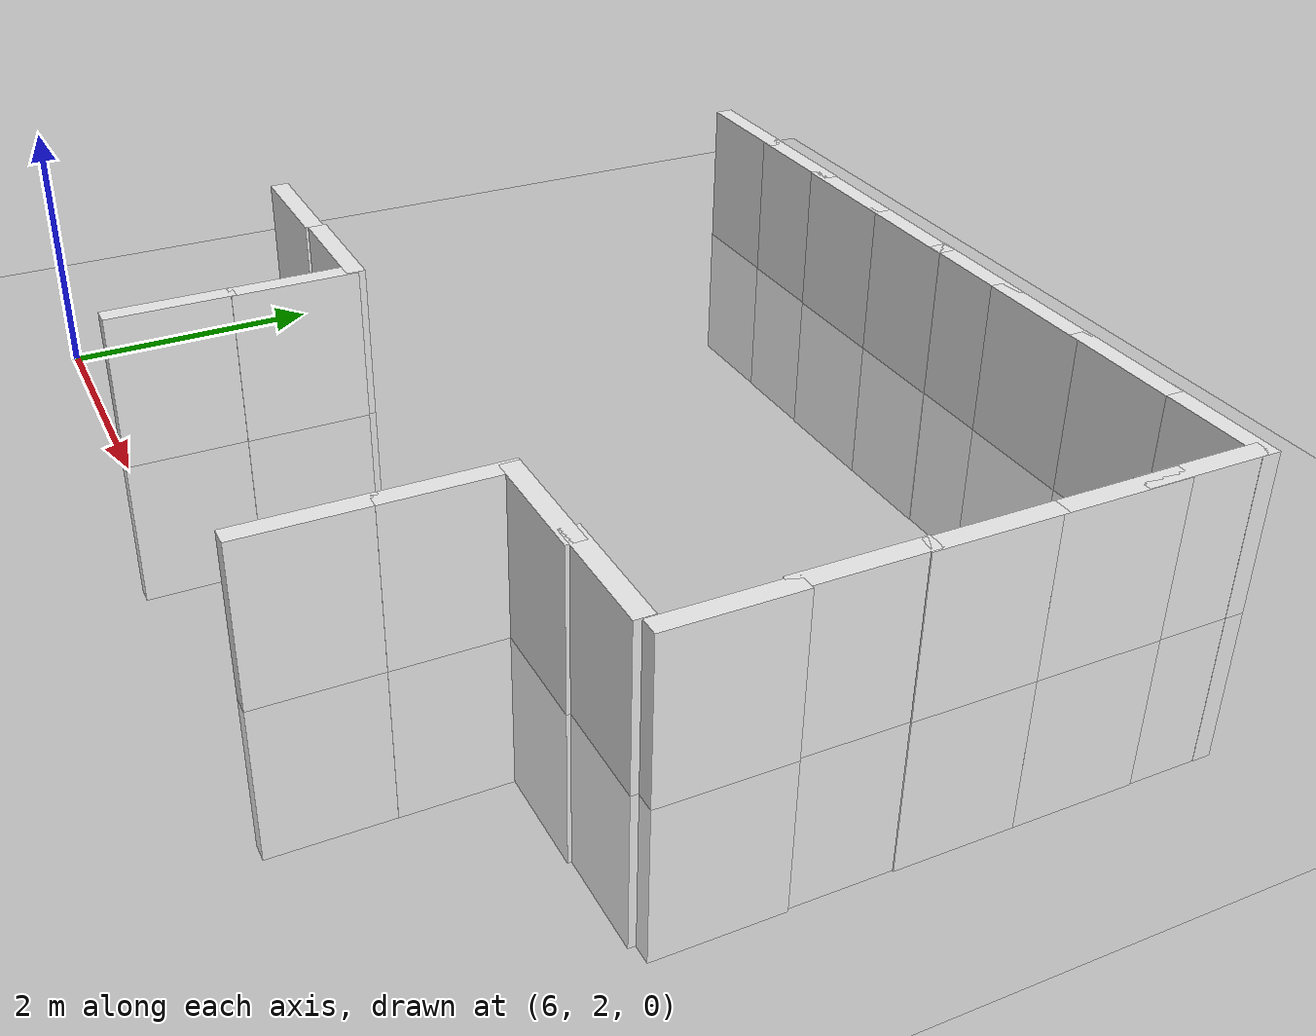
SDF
<sdf version="1.6">
 <world name="default">
  <model name="ground_plane">
   <static>1</static>
   <link name="link">
    <collision name="collision">
     <geometry><plane><normal>0 0 1</normal><size>100 100</size></plane></geometry>
     <surface><friction><ode><mu>100</mu><mu2>50</mu2></ode></friction></surface>
    </collision>
    <visual name="visual">
     <cast_shadows>0</cast_shadows>
     <geometry><plane><normal>0 0 1</normal><size>100 100</size></plane></geometry>
     <material>
      <script><uri>file://media/materials/scripts/gazebo.material</uri><name>Gazebo/Grey</name></script>
     </material>
    </visual>
   </link>
  </model>
  <model name="wall_left_12_clone_6">
   <link name="Wall_10">
    <inertial>
     <mass>1</mass>
     <inertia><ixx>1</ixx><ixy>0</ixy><ixz>0</ixz><iyy>1</iyy><iyz>0</iyz><izz>1</izz></inertia>
    </inertial>
    <visual name="Wall_10_Visual_0">
     <geometry><box><size>1 0.15 2.5</size></box></geometry>
     <material>
      <script>
       <uri>model://wall/materials/scripts</uri>
       <uri>model://wall/materials/textures</uri>
       <name>wall_white</name>
      </script>
      <shader type="pixel"><normal_map>__default__</normal_map></shader>
      <ambient>1 1 1 1</ambient>
      <diffuse>1 1 1 1</diffuse>
      <specular>0 0 0 1</specular>
      <emissive>0 0 0 1</emissive>
     </material>
     <meta><layer>0</layer></meta>
    </visual>
    <collision name="Wall_10_Collision_0">
     <geometry><box><size>1 0.15 2.5</size></box></geometry>
     <surface>
      <friction>
       <ode><mu>1</mu><mu2>1</mu2><fdir1>0 0 0</fdir1><slip1>0</slip1><slip2>0</slip2></ode>
       <torsional>
        <coefficient>1</coefficient>
        <patch_radius>0</patch_radius>
        <surface_radius>0</surface_radius>
        <use_patch_radius>1</use_patch_radius>
        <ode><slip>0</slip></ode>
       </torsional>
      </friction>
      <bounce><restitution_coefficient>0</restitution_coefficient><threshold>1e+06</threshold></bounce>
      <contact>
       <collide_without_contact>0</collide_without_contact>
       <collide_without_contact_bitmask>1</collide_without_contact_bitmask>
       <collide_bitmask>1</collide_bitmask>
       <ode>
        <soft_cfm>0</soft_cfm>
        <soft_erp>0.2</soft_erp>
        <kp>1e+13</kp>
        <kd>1</kd>
        <max_vel>0.01</max_vel>
        <min_depth>0</min_depth>
       </ode>
       <bullet>
        <split_impulse>1</split_impulse>
        <split_impulse_penetration_threshold>-0.01</split_impulse_penetration_threshold>
        <soft_cfm>0</soft_cfm>
        <soft_erp>0.2</soft_erp>
        <kp>1e+13</kp>
        <kd>1</kd>
       </bullet>
      </contact>
     </surface>
    </collision>
   </link>
   <static>1</static>
   <pose>7.89682 2.48741 0 0 -0 1.57</pose>
  </model>
  <model name="wall_left_12_clone_7">
   <link name="Wall_10">
    <inertial>
     <mass>1</mass>
     <inertia><ixx>1</ixx><ixy>0</ixy><ixz>0</ixz><iyy>1</iyy><iyz>0</iyz><izz>1</izz></inertia>
    </inertial>
    <visual name="Wall_10_Visual_0">
     <geometry><box><size>1 0.15 2.5</size></box></geometry>
     <material>
      <script>
       <uri>model://wall/materials/scripts</uri>
       <uri>model://wall/materials/textures</uri>
       <name>wall_white</name>
      </script>
      <shader type="pixel"><normal_map>__default__</normal_map></shader>
      <ambient>1 1 1 1</ambient>
      <diffuse>1 1 1 1</diffuse>
      <specular>0 0 0 1</specular>
      <emissive>0 0 0 1</emissive>
     </material>
     <meta><layer>0</layer></meta>
    </visual>
    <collision name="Wall_10_Collision_0">
     <geometry><box><size>1 0.15 2.5</size></box></geometry>
     <surface>
      <friction>
       <ode><mu>1</mu><mu2>1</mu2><fdir1>0 0 0</fdir1><slip1>0</slip1><slip2>0</slip2></ode>
       <torsional>
        <coefficient>1</coefficient>
        <patch_radius>0</patch_radius>
        <surface_radius>0</surface_radius>
        <use_patch_radius>1</use_patch_radius>
        <ode><slip>0</slip></ode>
       </torsional>
      </friction>
      <bounce><restitution_coefficient>0</restitution_coefficient><threshold>1e+06</threshold></bounce>
      <contact>
       <collide_without_contact>0</collide_without_contact>
       <collide_without_contact_bitmask>1</collide_without_contact_bitmask>
       <collide_bitmask>1</collide_bitmask>
       <ode>
        <soft_cfm>0</soft_cfm>
        <soft_erp>0.2</soft_erp>
        <kp>1e+13</kp>
        <kd>1</kd>
        <max_vel>0.01</max_vel>
        <min_depth>0</min_depth>
       </ode>
       <bullet>
        <split_impulse>1</split_impulse>
        <split_impulse_penetration_threshold>-0.01</split_impulse_penetration_threshold>
        <soft_cfm>0</soft_cfm>
        <soft_erp>0.2</soft_erp>
        <kp>1e+13</kp>
        <kd>1</kd>
       </bullet>
      </contact>
     </surface>
    </collision>
   </link>
   <static>1</static>
   <pose>7.90362 3.44582 0 0 -0 1.57</pose>
  </model>
  <model name="wall_left_12_clone_clone_9">
   <link name="Wall_10">
    <inertial>
     <mass>1</mass>
     <inertia><ixx>1</ixx><ixy>0</ixy><ixz>0</ixz><iyy>1</iyy><iyz>0</iyz><izz>1</izz></inertia>
    </inertial>
    <visual name="Wall_10_Visual_0">
     <geometry><box><size>1 0.15 2.5</size></box></geometry>
     <material>
      <script>
       <uri>model://wall/materials/scripts</uri>
       <uri>model://wall/materials/textures</uri>
       <name>wall_white</name>
      </script>
      <shader type="pixel"><normal_map>__default__</normal_map></shader>
      <ambient>1 1 1 1</ambient>
      <diffuse>1 1 1 1</diffuse>
      <specular>0 0 0 1</specular>
      <emissive>0 0 0 1</emissive>
     </material>
     <meta><layer>0</layer></meta>
    </visual>
    <collision name="Wall_10_Collision_0">
     <geometry><box><size>1 0.15 2.5</size></box></geometry>
     <surface>
      <friction>
       <ode><mu>1</mu><mu2>1</mu2><fdir1>0 0 0</fdir1><slip1>0</slip1><slip2>0</slip2></ode>
       <torsional>
        <coefficient>1</coefficient>
        <patch_radius>0</patch_radius>
        <surface_radius>0</surface_radius>
        <use_patch_radius>1</use_patch_radius>
        <ode><slip>0</slip></ode>
       </torsional>
      </friction>
      <bounce><restitution_coefficient>0</restitution_coefficient><threshold>1e+06</threshold></bounce>
      <contact>
       <collide_without_contact>0</collide_without_contact>
       <collide_without_contact_bitmask>1</collide_without_contact_bitmask>
       <collide_bitmask>1</collide_bitmask>
       <ode>
        <soft_cfm>0</soft_cfm>
        <soft_erp>0.2</soft_erp>
        <kp>1e+13</kp>
        <kd>1</kd>
        <max_vel>0.01</max_vel>
        <min_depth>0</min_depth>
       </ode>
       <bullet>
        <split_impulse>1</split_impulse>
        <split_impulse_penetration_threshold>-0.01</split_impulse_penetration_threshold>
        <soft_cfm>0</soft_cfm>
        <soft_erp>0.2</soft_erp>
        <kp>1e+13</kp>
        <kd>1</kd>
       </bullet>
      </contact>
     </surface>
    </collision>
   </link>
   <static>1</static>
   <pose>11.1292 2.51686 0 0 -0 1.57</pose>
  </model>
  <model name="wall_left_12_clone_clone_10">
   <link name="Wall_10">
    <inertial>
     <mass>1</mass>
     <inertia><ixx>1</ixx><ixy>0</ixy><ixz>0</ixz><iyy>1</iyy><iyz>0</iyz><izz>1</izz></inertia>
    </inertial>
    <visual name="Wall_10_Visual_0">
     <geometry><box><size>1 0.15 2.5</size></box></geometry>
     <material>
      <script>
       <uri>model://wall/materials/scripts</uri>
       <uri>model://wall/materials/textures</uri>
       <name>wall_white</name>
      </script>
      <shader type="pixel"><normal_map>__default__</normal_map></shader>
      <ambient>1 1 1 1</ambient>
      <diffuse>1 1 1 1</diffuse>
      <specular>0 0 0 1</specular>
      <emissive>0 0 0 1</emissive>
     </material>
     <meta><layer>0</layer></meta>
    </visual>
    <collision name="Wall_10_Collision_0">
     <geometry><box><size>1 0.15 2.5</size></box></geometry>
     <surface>
      <friction>
       <ode><mu>1</mu><mu2>1</mu2><fdir1>0 0 0</fdir1><slip1>0</slip1><slip2>0</slip2></ode>
       <torsional>
        <coefficient>1</coefficient>
        <patch_radius>0</patch_radius>
        <surface_radius>0</surface_radius>
        <use_patch_radius>1</use_patch_radius>
        <ode><slip>0</slip></ode>
       </torsional>
      </friction>
      <bounce><restitution_coefficient>0</restitution_coefficient><threshold>1e+06</threshold></bounce>
      <contact>
       <collide_without_contact>0</collide_without_contact>
       <collide_without_contact_bitmask>1</collide_without_contact_bitmask>
       <collide_bitmask>1</collide_bitmask>
       <ode>
        <soft_cfm>0</soft_cfm>
        <soft_erp>0.2</soft_erp>
        <kp>1e+13</kp>
        <kd>1</kd>
        <max_vel>0.01</max_vel>
        <min_depth>0</min_depth>
       </ode>
       <bullet>
        <split_impulse>1</split_impulse>
        <split_impulse_penetration_threshold>-0.01</split_impulse_penetration_threshold>
        <soft_cfm>0</soft_cfm>
        <soft_erp>0.2</soft_erp>
        <kp>1e+13</kp>
        <kd>1</kd>
       </bullet>
      </contact>
     </surface>
    </collision>
   </link>
   <static>1</static>
   <pose>11.1319 3.45812 0 0 -0 1.57</pose>
  </model>
  <model name="wall_right_13_clone_clone_0">
   <link name="Wall_10">
    <inertial>
     <mass>1</mass>
     <inertia><ixx>1</ixx><ixy>0</ixy><ixz>0</ixz><iyy>1</iyy><iyz>0</iyz><izz>1</izz></inertia>
    </inertial>
    <visual name="Wall_10_Visual_0">
     <geometry><box><size>1 0.15 2.5</size></box></geometry>
     <material>
      <script>
       <uri>model://wall/materials/scripts</uri>
       <uri>model://wall/materials/textures</uri>
       <name>wall_white</name>
      </script>
      <shader type="pixel"><normal_map>__default__</normal_map></shader>
      <ambient>1 1 1 1</ambient>
      <diffuse>1 1 1 1</diffuse>
      <specular>0 0 0 1</specular>
      <emissive>0 0 0 1</emissive>
     </material>
     <meta><layer>0</layer></meta>
    </visual>
    <collision name="Wall_10_Collision_0">
     <geometry><box><size>1 0.15 2.5</size></box></geometry>
     <surface>
      <friction>
       <ode><mu>1</mu><mu2>1</mu2><fdir1>0 0 0</fdir1><slip1>0</slip1><slip2>0</slip2></ode>
       <torsional>
        <coefficient>1</coefficient>
        <patch_radius>0</patch_radius>
        <surface_radius>0</surface_radius>
        <use_patch_radius>1</use_patch_radius>
        <ode><slip>0</slip></ode>
       </torsional>
      </friction>
      <bounce><restitution_coefficient>0</restitution_coefficient><threshold>1e+06</threshold></bounce>
      <contact>
       <collide_without_contact>0</collide_without_contact>
       <collide_without_contact_bitmask>1</collide_without_contact_bitmask>
       <collide_bitmask>1</collide_bitmask>
       <ode>
        <soft_cfm>0</soft_cfm>
        <soft_erp>0.2</soft_erp>
        <kp>1e+13</kp>
        <kd>1</kd>
        <max_vel>0.01</max_vel>
        <min_depth>0</min_depth>
       </ode>
       <bullet>
        <split_impulse>1</split_impulse>
        <split_impulse_penetration_threshold>-0.01</split_impulse_penetration_threshold>
        <soft_cfm>0</soft_cfm>
        <soft_erp>0.2</soft_erp>
        <kp>1e+13</kp>
        <kd>1</kd>
       </bullet>
      </contact>
     </surface>
    </collision>
   </link>
   <static>1</static>
   <pose>7.46229 3.92869 0 0 -0 0</pose>
  </model>
  <model name="wall_right_13_clone_clone_1">
   <link name="Wall_10">
    <inertial>
     <mass>1</mass>
     <inertia><ixx>1</ixx><ixy>0</ixy><ixz>0</ixz><iyy>1</iyy><iyz>0</iyz><izz>1</izz></inertia>
    </inertial>
    <visual name="Wall_10_Visual_0">
     <geometry><box><size>1 0.15 2.5</size></box></geometry>
     <material>
      <script>
       <uri>model://wall/materials/scripts</uri>
       <uri>model://wall/materials/textures</uri>
       <name>wall_white</name>
      </script>
      <shader type="pixel"><normal_map>__default__</normal_map></shader>
      <ambient>1 1 1 1</ambient>
      <diffuse>1 1 1 1</diffuse>
      <specular>0 0 0 1</specular>
      <emissive>0 0 0 1</emissive>
     </material>
     <meta><layer>0</layer></meta>
    </visual>
    <collision name="Wall_10_Collision_0">
     <geometry><box><size>1 0.15 2.5</size></box></geometry>
     <surface>
      <friction>
       <ode><mu>1</mu><mu2>1</mu2><fdir1>0 0 0</fdir1><slip1>0</slip1><slip2>0</slip2></ode>
       <torsional>
        <coefficient>1</coefficient>
        <patch_radius>0</patch_radius>
        <surface_radius>0</surface_radius>
        <use_patch_radius>1</use_patch_radius>
        <ode><slip>0</slip></ode>
       </torsional>
      </friction>
      <bounce><restitution_coefficient>0</restitution_coefficient><threshold>1e+06</threshold></bounce>
      <contact>
       <collide_without_contact>0</collide_without_contact>
       <collide_without_contact_bitmask>1</collide_without_contact_bitmask>
       <collide_bitmask>1</collide_bitmask>
       <ode>
        <soft_cfm>0</soft_cfm>
        <soft_erp>0.2</soft_erp>
        <kp>1e+13</kp>
        <kd>1</kd>
        <max_vel>0.01</max_vel>
        <min_depth>0</min_depth>
       </ode>
       <bullet>
        <split_impulse>1</split_impulse>
        <split_impulse_penetration_threshold>-0.01</split_impulse_penetration_threshold>
        <soft_cfm>0</soft_cfm>
        <soft_erp>0.2</soft_erp>
        <kp>1e+13</kp>
        <kd>1</kd>
       </bullet>
      </contact>
     </surface>
    </collision>
   </link>
   <static>1</static>
   <pose>6.47053 3.90639 0 0 -0 0</pose>
  </model>
  <model name="wall_right_13_clone_clone_8">
   <link name="Wall_10">
    <inertial>
     <mass>1</mass>
     <inertia><ixx>1</ixx><ixy>0</ixy><ixz>0</ixz><iyy>1</iyy><iyz>0</iyz><izz>1</izz></inertia>
    </inertial>
    <visual name="Wall_10_Visual_0">
     <geometry><box><size>1 0.15 2.5</size></box></geometry>
     <material>
      <script>
       <uri>model://wall/materials/scripts</uri>
       <uri>model://wall/materials/textures</uri>
       <name>wall_white</name>
      </script>
      <shader type="pixel"><normal_map>__default__</normal_map></shader>
      <ambient>1 1 1 1</ambient>
      <diffuse>1 1 1 1</diffuse>
      <specular>0 0 0 1</specular>
      <emissive>0 0 0 1</emissive>
     </material>
     <meta><layer>0</layer></meta>
    </visual>
    <collision name="Wall_10_Collision_0">
     <geometry><box><size>1 0.15 2.5</size></box></geometry>
     <surface>
      <friction>
       <ode><mu>1</mu><mu2>1</mu2><fdir1>0 0 0</fdir1><slip1>0</slip1><slip2>0</slip2></ode>
       <torsional>
        <coefficient>1</coefficient>
        <patch_radius>0</patch_radius>
        <surface_radius>0</surface_radius>
        <use_patch_radius>1</use_patch_radius>
        <ode><slip>0</slip></ode>
       </torsional>
      </friction>
      <bounce><restitution_coefficient>0</restitution_coefficient><threshold>1e+06</threshold></bounce>
      <contact>
       <collide_without_contact>0</collide_without_contact>
       <collide_without_contact_bitmask>1</collide_without_contact_bitmask>
       <collide_bitmask>1</collide_bitmask>
       <ode>
        <soft_cfm>0</soft_cfm>
        <soft_erp>0.2</soft_erp>
        <kp>1e+13</kp>
        <kd>1</kd>
        <max_vel>0.01</max_vel>
        <min_depth>0</min_depth>
       </ode>
       <bullet>
        <split_impulse>1</split_impulse>
        <split_impulse_penetration_threshold>-0.01</split_impulse_penetration_threshold>
        <soft_cfm>0</soft_cfm>
        <soft_erp>0.2</soft_erp>
        <kp>1e+13</kp>
        <kd>1</kd>
       </bullet>
      </contact>
     </surface>
    </collision>
   </link>
   <static>1</static>
   <pose>11.5826 3.88538 0 0 -0 0</pose>
  </model>
  <model name="wall_right_13_clone_clone_9">
   <link name="Wall_10">
    <inertial>
     <mass>1</mass>
     <inertia><ixx>1</ixx><ixy>0</ixy><ixz>0</ixz><iyy>1</iyy><iyz>0</iyz><izz>1</izz></inertia>
    </inertial>
    <visual name="Wall_10_Visual_0">
     <geometry><box><size>1 0.15 2.5</size></box></geometry>
     <material>
      <script>
       <uri>model://wall/materials/scripts</uri>
       <uri>model://wall/materials/textures</uri>
       <name>wall_white</name>
      </script>
      <shader type="pixel"><normal_map>__default__</normal_map></shader>
      <ambient>1 1 1 1</ambient>
      <diffuse>1 1 1 1</diffuse>
      <specular>0 0 0 1</specular>
      <emissive>0 0 0 1</emissive>
     </material>
     <meta><layer>0</layer></meta>
    </visual>
    <collision name="Wall_10_Collision_0">
     <geometry><box><size>1 0.15 2.5</size></box></geometry>
     <surface>
      <friction>
       <ode><mu>1</mu><mu2>1</mu2><fdir1>0 0 0</fdir1><slip1>0</slip1><slip2>0</slip2></ode>
       <torsional>
        <coefficient>1</coefficient>
        <patch_radius>0</patch_radius>
        <surface_radius>0</surface_radius>
        <use_patch_radius>1</use_patch_radius>
        <ode><slip>0</slip></ode>
       </torsional>
      </friction>
      <bounce><restitution_coefficient>0</restitution_coefficient><threshold>1e+06</threshold></bounce>
      <contact>
       <collide_without_contact>0</collide_without_contact>
       <collide_without_contact_bitmask>1</collide_without_contact_bitmask>
       <collide_bitmask>1</collide_bitmask>
       <ode>
        <soft_cfm>0</soft_cfm>
        <soft_erp>0.2</soft_erp>
        <kp>1e+13</kp>
        <kd>1</kd>
        <max_vel>0.01</max_vel>
        <min_depth>0</min_depth>
       </ode>
       <bullet>
        <split_impulse>1</split_impulse>
        <split_impulse_penetration_threshold>-0.01</split_impulse_penetration_threshold>
        <soft_cfm>0</soft_cfm>
        <soft_erp>0.2</soft_erp>
        <kp>1e+13</kp>
        <kd>1</kd>
       </bullet>
      </contact>
     </surface>
    </collision>
   </link>
   <static>1</static>
   <pose>12.4067 3.91491 0 0 -0 0</pose>
  </model>
  <model name="wall_left_12_clone_7_clone">
   <link name="Wall_10">
    <inertial>
     <mass>1</mass>
     <inertia><ixx>1</ixx><ixy>0</ixy><ixz>0</ixz><iyy>1</iyy><iyz>0</iyz><izz>1</izz></inertia>
    </inertial>
    <visual name="Wall_10_Visual_0">
     <geometry><box><size>1 0.15 2.5</size></box></geometry>
     <material>
      <script>
       <uri>model://wall/materials/scripts</uri>
       <uri>model://wall/materials/textures</uri>
       <name>wall_white</name>
      </script>
      <shader type="pixel"><normal_map>__default__</normal_map></shader>
      <ambient>1 1 1 1</ambient>
      <diffuse>1 1 1 1</diffuse>
      <specular>0 0 0 1</specular>
      <emissive>0 0 0 1</emissive>
     </material>
     <meta><layer>0</layer></meta>
    </visual>
    <collision name="Wall_10_Collision_0">
     <geometry><box><size>1 0.15 2.5</size></box></geometry>
     <surface>
      <friction>
       <ode><mu>1</mu><mu2>1</mu2><fdir1>0 0 0</fdir1><slip1>0</slip1><slip2>0</slip2></ode>
       <torsional>
        <coefficient>1</coefficient>
        <patch_radius>0</patch_radius>
        <surface_radius>0</surface_radius>
        <use_patch_radius>1</use_patch_radius>
        <ode><slip>0</slip></ode>
       </torsional>
      </friction>
      <bounce><restitution_coefficient>0</restitution_coefficient><threshold>1e+06</threshold></bounce>
      <contact>
       <collide_without_contact>0</collide_without_contact>
       <collide_without_contact_bitmask>1</collide_without_contact_bitmask>
       <collide_bitmask>1</collide_bitmask>
       <ode>
        <soft_cfm>0</soft_cfm>
        <soft_erp>0.2</soft_erp>
        <kp>1e+13</kp>
        <kd>1</kd>
        <max_vel>0.01</max_vel>
        <min_depth>0</min_depth>
       </ode>
       <bullet>
        <split_impulse>1</split_impulse>
        <split_impulse_penetration_threshold>-0.01</split_impulse_penetration_threshold>
        <soft_cfm>0</soft_cfm>
        <soft_erp>0.2</soft_erp>
        <kp>1e+13</kp>
        <kd>1</kd>
       </bullet>
      </contact>
     </surface>
    </collision>
   </link>
   <static>1</static>
   <pose>12.9889 4.3942 0 0 -0 1.57</pose>
  </model>
  <model name="wall_left_12_clone_7_clone_0">
   <link name="Wall_10">
    <inertial>
     <mass>1</mass>
     <inertia><ixx>1</ixx><ixy>0</ixy><ixz>0</ixz><iyy>1</iyy><iyz>0</iyz><izz>1</izz></inertia>
    </inertial>
    <visual name="Wall_10_Visual_0">
     <geometry><box><size>1 0.15 2.5</size></box></geometry>
     <material>
      <script>
       <uri>model://wall/materials/scripts</uri>
       <uri>model://wall/materials/textures</uri>
       <name>wall_white</name>
      </script>
      <shader type="pixel"><normal_map>__default__</normal_map></shader>
      <ambient>1 1 1 1</ambient>
      <diffuse>1 1 1 1</diffuse>
      <specular>0 0 0 1</specular>
      <emissive>0 0 0 1</emissive>
     </material>
     <meta><layer>0</layer></meta>
    </visual>
    <collision name="Wall_10_Collision_0">
     <geometry><box><size>1 0.15 2.5</size></box></geometry>
     <surface>
      <friction>
       <ode><mu>1</mu><mu2>1</mu2><fdir1>0 0 0</fdir1><slip1>0</slip1><slip2>0</slip2></ode>
       <torsional>
        <coefficient>1</coefficient>
        <patch_radius>0</patch_radius>
        <surface_radius>0</surface_radius>
        <use_patch_radius>1</use_patch_radius>
        <ode><slip>0</slip></ode>
       </torsional>
      </friction>
      <bounce><restitution_coefficient>0</restitution_coefficient><threshold>1e+06</threshold></bounce>
      <contact>
       <collide_without_contact>0</collide_without_contact>
       <collide_without_contact_bitmask>1</collide_without_contact_bitmask>
       <collide_bitmask>1</collide_bitmask>
       <ode>
        <soft_cfm>0</soft_cfm>
        <soft_erp>0.2</soft_erp>
        <kp>1e+13</kp>
        <kd>1</kd>
        <max_vel>0.01</max_vel>
        <min_depth>0</min_depth>
       </ode>
       <bullet>
        <split_impulse>1</split_impulse>
        <split_impulse_penetration_threshold>-0.01</split_impulse_penetration_threshold>
        <soft_cfm>0</soft_cfm>
        <soft_erp>0.2</soft_erp>
        <kp>1e+13</kp>
        <kd>1</kd>
       </bullet>
      </contact>
     </surface>
    </collision>
   </link>
   <static>1</static>
   <pose>12.9699 5.29161 0 0 -0 1.57</pose>
  </model>
  <model name="wall_left_12_clone_7_clone_1">
   <link name="Wall_10">
    <inertial>
     <mass>1</mass>
     <inertia><ixx>1</ixx><ixy>0</ixy><ixz>0</ixz><iyy>1</iyy><iyz>0</iyz><izz>1</izz></inertia>
    </inertial>
    <visual name="Wall_10_Visual_0">
     <geometry><box><size>1 0.15 2.5</size></box></geometry>
     <material>
      <script>
       <uri>model://wall/materials/scripts</uri>
       <uri>model://wall/materials/textures</uri>
       <name>wall_white</name>
      </script>
      <shader type="pixel"><normal_map>__default__</normal_map></shader>
      <ambient>1 1 1 1</ambient>
      <diffuse>1 1 1 1</diffuse>
      <specular>0 0 0 1</specular>
      <emissive>0 0 0 1</emissive>
     </material>
     <meta><layer>0</layer></meta>
    </visual>
    <collision name="Wall_10_Collision_0">
     <geometry><box><size>1 0.15 2.5</size></box></geometry>
     <surface>
      <friction>
       <ode><mu>1</mu><mu2>1</mu2><fdir1>0 0 0</fdir1><slip1>0</slip1><slip2>0</slip2></ode>
       <torsional>
        <coefficient>1</coefficient>
        <patch_radius>0</patch_radius>
        <surface_radius>0</surface_radius>
        <use_patch_radius>1</use_patch_radius>
        <ode><slip>0</slip></ode>
       </torsional>
      </friction>
      <bounce><restitution_coefficient>0</restitution_coefficient><threshold>1e+06</threshold></bounce>
      <contact>
       <collide_without_contact>0</collide_without_contact>
       <collide_without_contact_bitmask>1</collide_without_contact_bitmask>
       <collide_bitmask>1</collide_bitmask>
       <ode>
        <soft_cfm>0</soft_cfm>
        <soft_erp>0.2</soft_erp>
        <kp>1e+13</kp>
        <kd>1</kd>
        <max_vel>0.01</max_vel>
        <min_depth>0</min_depth>
       </ode>
       <bullet>
        <split_impulse>1</split_impulse>
        <split_impulse_penetration_threshold>-0.01</split_impulse_penetration_threshold>
        <soft_cfm>0</soft_cfm>
        <soft_erp>0.2</soft_erp>
        <kp>1e+13</kp>
        <kd>1</kd>
       </bullet>
      </contact>
     </surface>
    </collision>
   </link>
   <static>1</static>
   <pose>12.9821 6.19469 0 0 -0 1.57</pose>
  </model>
  <model name="wall_left_12_clone_7_clone_1_clone">
   <link name="Wall_10">
    <inertial>
     <mass>1</mass>
     <inertia><ixx>1</ixx><ixy>0</ixy><ixz>0</ixz><iyy>1</iyy><iyz>0</iyz><izz>1</izz></inertia>
    </inertial>
    <visual name="Wall_10_Visual_0">
     <geometry><box><size>1 0.15 2.5</size></box></geometry>
     <material>
      <script>
       <uri>model://wall/materials/scripts</uri>
       <uri>model://wall/materials/textures</uri>
       <name>wall_white</name>
      </script>
      <shader type="pixel"><normal_map>__default__</normal_map></shader>
      <ambient>1 1 1 1</ambient>
      <diffuse>1 1 1 1</diffuse>
      <specular>0 0 0 1</specular>
      <emissive>0 0 0 1</emissive>
     </material>
     <meta><layer>0</layer></meta>
    </visual>
    <collision name="Wall_10_Collision_0">
     <geometry><box><size>1 0.15 2.5</size></box></geometry>
     <surface>
      <friction>
       <ode><mu>1</mu><mu2>1</mu2><fdir1>0 0 0</fdir1><slip1>0</slip1><slip2>0</slip2></ode>
       <torsional>
        <coefficient>1</coefficient>
        <patch_radius>0</patch_radius>
        <surface_radius>0</surface_radius>
        <use_patch_radius>1</use_patch_radius>
        <ode><slip>0</slip></ode>
       </torsional>
      </friction>
      <bounce><restitution_coefficient>0</restitution_coefficient><threshold>1e+06</threshold></bounce>
      <contact>
       <collide_without_contact>0</collide_without_contact>
       <collide_without_contact_bitmask>1</collide_without_contact_bitmask>
       <collide_bitmask>1</collide_bitmask>
       <ode>
        <soft_cfm>0</soft_cfm>
        <soft_erp>0.2</soft_erp>
        <kp>1e+13</kp>
        <kd>1</kd>
        <max_vel>0.01</max_vel>
        <min_depth>0</min_depth>
       </ode>
       <bullet>
        <split_impulse>1</split_impulse>
        <split_impulse_penetration_threshold>-0.01</split_impulse_penetration_threshold>
        <soft_cfm>0</soft_cfm>
        <soft_erp>0.2</soft_erp>
        <kp>1e+13</kp>
        <kd>1</kd>
       </bullet>
      </contact>
     </surface>
    </collision>
   </link>
   <static>1</static>
   <pose>12.983 7.14752 0 0 -0 1.57</pose>
  </model>
  <model name="wall_left_12_clone_7_clone_1_clone_0">
   <link name="Wall_10">
    <inertial>
     <mass>1</mass>
     <inertia><ixx>1</ixx><ixy>0</ixy><ixz>0</ixz><iyy>1</iyy><iyz>0</iyz><izz>1</izz></inertia>
    </inertial>
    <visual name="Wall_10_Visual_0">
     <geometry><box><size>1 0.15 2.5</size></box></geometry>
     <material>
      <script>
       <uri>model://wall/materials/scripts</uri>
       <uri>model://wall/materials/textures</uri>
       <name>wall_white</name>
      </script>
      <shader type="pixel"><normal_map>__default__</normal_map></shader>
      <ambient>1 1 1 1</ambient>
      <diffuse>1 1 1 1</diffuse>
      <specular>0 0 0 1</specular>
      <emissive>0 0 0 1</emissive>
     </material>
     <meta><layer>0</layer></meta>
    </visual>
    <collision name="Wall_10_Collision_0">
     <geometry><box><size>1 0.15 2.5</size></box></geometry>
     <surface>
      <friction>
       <ode><mu>1</mu><mu2>1</mu2><fdir1>0 0 0</fdir1><slip1>0</slip1><slip2>0</slip2></ode>
       <torsional>
        <coefficient>1</coefficient>
        <patch_radius>0</patch_radius>
        <surface_radius>0</surface_radius>
        <use_patch_radius>1</use_patch_radius>
        <ode><slip>0</slip></ode>
       </torsional>
      </friction>
      <bounce><restitution_coefficient>0</restitution_coefficient><threshold>1e+06</threshold></bounce>
      <contact>
       <collide_without_contact>0</collide_without_contact>
       <collide_without_contact_bitmask>1</collide_without_contact_bitmask>
       <collide_bitmask>1</collide_bitmask>
       <ode>
        <soft_cfm>0</soft_cfm>
        <soft_erp>0.2</soft_erp>
        <kp>1e+13</kp>
        <kd>1</kd>
        <max_vel>0.01</max_vel>
        <min_depth>0</min_depth>
       </ode>
       <bullet>
        <split_impulse>1</split_impulse>
        <split_impulse_penetration_threshold>-0.01</split_impulse_penetration_threshold>
        <soft_cfm>0</soft_cfm>
        <soft_erp>0.2</soft_erp>
        <kp>1e+13</kp>
        <kd>1</kd>
       </bullet>
      </contact>
     </surface>
    </collision>
   </link>
   <static>1</static>
   <pose>12.978 7.80362 0 0 -0 1.57</pose>
  </model>
  <model name="wall_right_13_clone_clone_9_clone">
   <link name="Wall_10">
    <inertial>
     <mass>1</mass>
     <inertia><ixx>1</ixx><ixy>0</ixy><ixz>0</ixz><iyy>1</iyy><iyz>0</iyz><izz>1</izz></inertia>
    </inertial>
    <visual name="Wall_10_Visual_0">
     <geometry><box><size>1 0.15 2.5</size></box></geometry>
     <material>
      <script>
       <uri>model://wall/materials/scripts</uri>
       <uri>model://wall/materials/textures</uri>
       <name>wall_white</name>
      </script>
      <shader type="pixel"><normal_map>__default__</normal_map></shader>
      <ambient>1 1 1 1</ambient>
      <diffuse>1 1 1 1</diffuse>
      <specular>0 0 0 1</specular>
      <emissive>0 0 0 1</emissive>
     </material>
     <meta><layer>0</layer></meta>
    </visual>
    <collision name="Wall_10_Collision_0">
     <geometry><box><size>1 0.15 2.5</size></box></geometry>
     <surface>
      <friction>
       <ode><mu>1</mu><mu2>1</mu2><fdir1>0 0 0</fdir1><slip1>0</slip1><slip2>0</slip2></ode>
       <torsional>
        <coefficient>1</coefficient>
        <patch_radius>0</patch_radius>
        <surface_radius>0</surface_radius>
        <use_patch_radius>1</use_patch_radius>
        <ode><slip>0</slip></ode>
       </torsional>
      </friction>
      <bounce><restitution_coefficient>0</restitution_coefficient><threshold>1e+06</threshold></bounce>
      <contact>
       <collide_without_contact>0</collide_without_contact>
       <collide_without_contact_bitmask>1</collide_without_contact_bitmask>
       <collide_bitmask>1</collide_bitmask>
       <ode>
        <soft_cfm>0</soft_cfm>
        <soft_erp>0.2</soft_erp>
        <kp>1e+13</kp>
        <kd>1</kd>
        <max_vel>0.01</max_vel>
        <min_depth>0</min_depth>
       </ode>
       <bullet>
        <split_impulse>1</split_impulse>
        <split_impulse_penetration_threshold>-0.01</split_impulse_penetration_threshold>
        <soft_cfm>0</soft_cfm>
        <soft_erp>0.2</soft_erp>
        <kp>1e+13</kp>
        <kd>1</kd>
       </bullet>
      </contact>
     </surface>
    </collision>
   </link>
   <static>1</static>
   <pose>12.5557 8.28504 0 0 -0 0</pose>
  </model>
  <model name="wall_right_13_clone_clone_9_clone_0">
   <link name="Wall_10">
    <inertial>
     <mass>1</mass>
     <inertia><ixx>1</ixx><ixy>0</ixy><ixz>0</ixz><iyy>1</iyy><iyz>0</iyz><izz>1</izz></inertia>
    </inertial>
    <visual name="Wall_10_Visual_0">
     <geometry><box><size>1 0.15 2.5</size></box></geometry>
     <material>
      <script>
       <uri>model://wall/materials/scripts</uri>
       <uri>model://wall/materials/textures</uri>
       <name>wall_white</name>
      </script>
      <shader type="pixel"><normal_map>__default__</normal_map></shader>
      <ambient>1 1 1 1</ambient>
      <diffuse>1 1 1 1</diffuse>
      <specular>0 0 0 1</specular>
      <emissive>0 0 0 1</emissive>
     </material>
     <meta><layer>0</layer></meta>
    </visual>
    <collision name="Wall_10_Collision_0">
     <geometry><box><size>1 0.15 2.5</size></box></geometry>
     <surface>
      <friction>
       <ode><mu>1</mu><mu2>1</mu2><fdir1>0 0 0</fdir1><slip1>0</slip1><slip2>0</slip2></ode>
       <torsional>
        <coefficient>1</coefficient>
        <patch_radius>0</patch_radius>
        <surface_radius>0</surface_radius>
        <use_patch_radius>1</use_patch_radius>
        <ode><slip>0</slip></ode>
       </torsional>
      </friction>
      <bounce><restitution_coefficient>0</restitution_coefficient><threshold>1e+06</threshold></bounce>
      <contact>
       <collide_without_contact>0</collide_without_contact>
       <collide_without_contact_bitmask>1</collide_without_contact_bitmask>
       <collide_bitmask>1</collide_bitmask>
       <ode>
        <soft_cfm>0</soft_cfm>
        <soft_erp>0.2</soft_erp>
        <kp>1e+13</kp>
        <kd>1</kd>
        <max_vel>0.01</max_vel>
        <min_depth>0</min_depth>
       </ode>
       <bullet>
        <split_impulse>1</split_impulse>
        <split_impulse_penetration_threshold>-0.01</split_impulse_penetration_threshold>
        <soft_cfm>0</soft_cfm>
        <soft_erp>0.2</soft_erp>
        <kp>1e+13</kp>
        <kd>1</kd>
       </bullet>
      </contact>
     </surface>
    </collision>
   </link>
   <static>1</static>
   <pose>11.6732 8.2803 0 0 -0 0</pose>
  </model>
  <model name="wall_right_13_clone_clone_9_clone_1">
   <link name="Wall_10">
    <inertial>
     <mass>1</mass>
     <inertia><ixx>1</ixx><ixy>0</ixy><ixz>0</ixz><iyy>1</iyy><iyz>0</iyz><izz>1</izz></inertia>
    </inertial>
    <visual name="Wall_10_Visual_0">
     <geometry><box><size>1 0.15 2.5</size></box></geometry>
     <material>
      <script>
       <uri>model://wall/materials/scripts</uri>
       <uri>model://wall/materials/textures</uri>
       <name>wall_white</name>
      </script>
      <shader type="pixel"><normal_map>__default__</normal_map></shader>
      <ambient>1 1 1 1</ambient>
      <diffuse>1 1 1 1</diffuse>
      <specular>0 0 0 1</specular>
      <emissive>0 0 0 1</emissive>
     </material>
     <meta><layer>0</layer></meta>
    </visual>
    <collision name="Wall_10_Collision_0">
     <geometry><box><size>1 0.15 2.5</size></box></geometry>
     <surface>
      <friction>
       <ode><mu>1</mu><mu2>1</mu2><fdir1>0 0 0</fdir1><slip1>0</slip1><slip2>0</slip2></ode>
       <torsional>
        <coefficient>1</coefficient>
        <patch_radius>0</patch_radius>
        <surface_radius>0</surface_radius>
        <use_patch_radius>1</use_patch_radius>
        <ode><slip>0</slip></ode>
       </torsional>
      </friction>
      <bounce><restitution_coefficient>0</restitution_coefficient><threshold>1e+06</threshold></bounce>
      <contact>
       <collide_without_contact>0</collide_without_contact>
       <collide_without_contact_bitmask>1</collide_without_contact_bitmask>
       <collide_bitmask>1</collide_bitmask>
       <ode>
        <soft_cfm>0</soft_cfm>
        <soft_erp>0.2</soft_erp>
        <kp>1e+13</kp>
        <kd>1</kd>
        <max_vel>0.01</max_vel>
        <min_depth>0</min_depth>
       </ode>
       <bullet>
        <split_impulse>1</split_impulse>
        <split_impulse_penetration_threshold>-0.01</split_impulse_penetration_threshold>
        <soft_cfm>0</soft_cfm>
        <soft_erp>0.2</soft_erp>
        <kp>1e+13</kp>
        <kd>1</kd>
       </bullet>
      </contact>
     </surface>
    </collision>
   </link>
   <static>1</static>
   <pose>10.7625 8.27696 0 0 -0 0</pose>
  </model>
  <model name="wall_right_13_clone_clone_9_clone_2">
   <link name="Wall_10">
    <inertial>
     <mass>1</mass>
     <inertia><ixx>1</ixx><ixy>0</ixy><ixz>0</ixz><iyy>1</iyy><iyz>0</iyz><izz>1</izz></inertia>
    </inertial>
    <visual name="Wall_10_Visual_0">
     <geometry><box><size>1 0.15 2.5</size></box></geometry>
     <material>
      <script>
       <uri>model://wall/materials/scripts</uri>
       <uri>model://wall/materials/textures</uri>
       <name>wall_white</name>
      </script>
      <shader type="pixel"><normal_map>__default__</normal_map></shader>
      <ambient>1 1 1 1</ambient>
      <diffuse>1 1 1 1</diffuse>
      <specular>0 0 0 1</specular>
      <emissive>0 0 0 1</emissive>
     </material>
     <meta><layer>0</layer></meta>
    </visual>
    <collision name="Wall_10_Collision_0">
     <geometry><box><size>1 0.15 2.5</size></box></geometry>
     <surface>
      <friction>
       <ode><mu>1</mu><mu2>1</mu2><fdir1>0 0 0</fdir1><slip1>0</slip1><slip2>0</slip2></ode>
       <torsional>
        <coefficient>1</coefficient>
        <patch_radius>0</patch_radius>
        <surface_radius>0</surface_radius>
        <use_patch_radius>1</use_patch_radius>
        <ode><slip>0</slip></ode>
       </torsional>
      </friction>
      <bounce><restitution_coefficient>0</restitution_coefficient><threshold>1e+06</threshold></bounce>
      <contact>
       <collide_without_contact>0</collide_without_contact>
       <collide_without_contact_bitmask>1</collide_without_contact_bitmask>
       <collide_bitmask>1</collide_bitmask>
       <ode>
        <soft_cfm>0</soft_cfm>
        <soft_erp>0.2</soft_erp>
        <kp>1e+13</kp>
        <kd>1</kd>
        <max_vel>0.01</max_vel>
        <min_depth>0</min_depth>
       </ode>
       <bullet>
        <split_impulse>1</split_impulse>
        <split_impulse_penetration_threshold>-0.01</split_impulse_penetration_threshold>
        <soft_cfm>0</soft_cfm>
        <soft_erp>0.2</soft_erp>
        <kp>1e+13</kp>
        <kd>1</kd>
       </bullet>
      </contact>
     </surface>
    </collision>
   </link>
   <static>1</static>
   <pose>9.95887 8.27928 0 0 -0 0</pose>
  </model>
  <model name="wall_right_13_clone_clone_9_clone_3">
   <link name="Wall_10">
    <inertial>
     <mass>1</mass>
     <inertia><ixx>1</ixx><ixy>0</ixy><ixz>0</ixz><iyy>1</iyy><iyz>0</iyz><izz>1</izz></inertia>
    </inertial>
    <visual name="Wall_10_Visual_0">
     <geometry><box><size>1 0.15 2.5</size></box></geometry>
     <material>
      <script>
       <uri>model://wall/materials/scripts</uri>
       <uri>model://wall/materials/textures</uri>
       <name>wall_white</name>
      </script>
      <shader type="pixel"><normal_map>__default__</normal_map></shader>
      <ambient>1 1 1 1</ambient>
      <diffuse>1 1 1 1</diffuse>
      <specular>0 0 0 1</specular>
      <emissive>0 0 0 1</emissive>
     </material>
     <meta><layer>0</layer></meta>
    </visual>
    <collision name="Wall_10_Collision_0">
     <geometry><box><size>1 0.15 2.5</size></box></geometry>
     <surface>
      <friction>
       <ode><mu>1</mu><mu2>1</mu2><fdir1>0 0 0</fdir1><slip1>0</slip1><slip2>0</slip2></ode>
       <torsional>
        <coefficient>1</coefficient>
        <patch_radius>0</patch_radius>
        <surface_radius>0</surface_radius>
        <use_patch_radius>1</use_patch_radius>
        <ode><slip>0</slip></ode>
       </torsional>
      </friction>
      <bounce><restitution_coefficient>0</restitution_coefficient><threshold>1e+06</threshold></bounce>
      <contact>
       <collide_without_contact>0</collide_without_contact>
       <collide_without_contact_bitmask>1</collide_without_contact_bitmask>
       <collide_bitmask>1</collide_bitmask>
       <ode>
        <soft_cfm>0</soft_cfm>
        <soft_erp>0.2</soft_erp>
        <kp>1e+13</kp>
        <kd>1</kd>
        <max_vel>0.01</max_vel>
        <min_depth>0</min_depth>
       </ode>
       <bullet>
        <split_impulse>1</split_impulse>
        <split_impulse_penetration_threshold>-0.01</split_impulse_penetration_threshold>
        <soft_cfm>0</soft_cfm>
        <soft_erp>0.2</soft_erp>
        <kp>1e+13</kp>
        <kd>1</kd>
       </bullet>
      </contact>
     </surface>
    </collision>
   </link>
   <static>1</static>
   <pose>9.09348 8.27295 0 0 -0 0</pose>
  </model>
  <model name="wall_right_13_clone_clone_9_clone_4">
   <link name="Wall_10">
    <inertial>
     <mass>1</mass>
     <inertia><ixx>1</ixx><ixy>0</ixy><ixz>0</ixz><iyy>1</iyy><iyz>0</iyz><izz>1</izz></inertia>
    </inertial>
    <visual name="Wall_10_Visual_0">
     <geometry><box><size>1 0.15 2.5</size></box></geometry>
     <material>
      <script>
       <uri>model://wall/materials/scripts</uri>
       <uri>model://wall/materials/textures</uri>
       <name>wall_white</name>
      </script>
      <shader type="pixel"><normal_map>__default__</normal_map></shader>
      <ambient>1 1 1 1</ambient>
      <diffuse>1 1 1 1</diffuse>
      <specular>0 0 0 1</specular>
      <emissive>0 0 0 1</emissive>
     </material>
     <meta><layer>0</layer></meta>
    </visual>
    <collision name="Wall_10_Collision_0">
     <geometry><box><size>1 0.15 2.5</size></box></geometry>
     <surface>
      <friction>
       <ode><mu>1</mu><mu2>1</mu2><fdir1>0 0 0</fdir1><slip1>0</slip1><slip2>0</slip2></ode>
       <torsional>
        <coefficient>1</coefficient>
        <patch_radius>0</patch_radius>
        <surface_radius>0</surface_radius>
        <use_patch_radius>1</use_patch_radius>
        <ode><slip>0</slip></ode>
       </torsional>
      </friction>
      <bounce><restitution_coefficient>0</restitution_coefficient><threshold>1e+06</threshold></bounce>
      <contact>
       <collide_without_contact>0</collide_without_contact>
       <collide_without_contact_bitmask>1</collide_without_contact_bitmask>
       <collide_bitmask>1</collide_bitmask>
       <ode>
        <soft_cfm>0</soft_cfm>
        <soft_erp>0.2</soft_erp>
        <kp>1e+13</kp>
        <kd>1</kd>
        <max_vel>0.01</max_vel>
        <min_depth>0</min_depth>
       </ode>
       <bullet>
        <split_impulse>1</split_impulse>
        <split_impulse_penetration_threshold>-0.01</split_impulse_penetration_threshold>
        <soft_cfm>0</soft_cfm>
        <soft_erp>0.2</soft_erp>
        <kp>1e+13</kp>
        <kd>1</kd>
       </bullet>
      </contact>
     </surface>
    </collision>
   </link>
   <static>1</static>
   <pose>8.19141 8.27136 0 0 -0 0</pose>
  </model>
  <model name="wall_right_13_clone_clone_9_clone_5">
   <link name="Wall_10">
    <inertial>
     <mass>1</mass>
     <inertia><ixx>1</ixx><ixy>0</ixy><ixz>0</ixz><iyy>1</iyy><iyz>0</iyz><izz>1</izz></inertia>
    </inertial>
    <visual name="Wall_10_Visual_0">
     <geometry><box><size>1 0.15 2.5</size></box></geometry>
     <material>
      <script>
       <uri>model://wall/materials/scripts</uri>
       <uri>model://wall/materials/textures</uri>
       <name>wall_white</name>
      </script>
      <shader type="pixel"><normal_map>__default__</normal_map></shader>
      <ambient>1 1 1 1</ambient>
      <diffuse>1 1 1 1</diffuse>
      <specular>0 0 0 1</specular>
      <emissive>0 0 0 1</emissive>
     </material>
     <meta><layer>0</layer></meta>
    </visual>
    <collision name="Wall_10_Collision_0">
     <geometry><box><size>1 0.15 2.5</size></box></geometry>
     <surface>
      <friction>
       <ode><mu>1</mu><mu2>1</mu2><fdir1>0 0 0</fdir1><slip1>0</slip1><slip2>0</slip2></ode>
       <torsional>
        <coefficient>1</coefficient>
        <patch_radius>0</patch_radius>
        <surface_radius>0</surface_radius>
        <use_patch_radius>1</use_patch_radius>
        <ode><slip>0</slip></ode>
       </torsional>
      </friction>
      <bounce><restitution_coefficient>0</restitution_coefficient><threshold>1e+06</threshold></bounce>
      <contact>
       <collide_without_contact>0</collide_without_contact>
       <collide_without_contact_bitmask>1</collide_without_contact_bitmask>
       <collide_bitmask>1</collide_bitmask>
       <ode>
        <soft_cfm>0</soft_cfm>
        <soft_erp>0.2</soft_erp>
        <kp>1e+13</kp>
        <kd>1</kd>
        <max_vel>0.01</max_vel>
        <min_depth>0</min_depth>
       </ode>
       <bullet>
        <split_impulse>1</split_impulse>
        <split_impulse_penetration_threshold>-0.01</split_impulse_penetration_threshold>
        <soft_cfm>0</soft_cfm>
        <soft_erp>0.2</soft_erp>
        <kp>1e+13</kp>
        <kd>1</kd>
       </bullet>
      </contact>
     </surface>
    </collision>
   </link>
   <static>1</static>
   <pose>7.36356 8.2788 0 0 -0 0</pose>
  </model>
  <model name="wall_right_13_clone_clone_9_clone_6">
   <link name="Wall_10">
    <inertial>
     <mass>1</mass>
     <inertia><ixx>1</ixx><ixy>0</ixy><ixz>0</ixz><iyy>1</iyy><iyz>0</iyz><izz>1</izz></inertia>
    </inertial>
    <visual name="Wall_10_Visual_0">
     <geometry><box><size>1 0.15 2.5</size></box></geometry>
     <material>
      <script>
       <uri>model://wall/materials/scripts</uri>
       <uri>model://wall/materials/textures</uri>
       <name>wall_white</name>
      </script>
      <shader type="pixel"><normal_map>__default__</normal_map></shader>
      <ambient>1 1 1 1</ambient>
      <diffuse>1 1 1 1</diffuse>
      <specular>0 0 0 1</specular>
      <emissive>0 0 0 1</emissive>
     </material>
     <meta><layer>0</layer></meta>
    </visual>
    <collision name="Wall_10_Collision_0">
     <geometry><box><size>1 0.15 2.5</size></box></geometry>
     <surface>
      <friction>
       <ode><mu>1</mu><mu2>1</mu2><fdir1>0 0 0</fdir1><slip1>0</slip1><slip2>0</slip2></ode>
       <torsional>
        <coefficient>1</coefficient>
        <patch_radius>0</patch_radius>
        <surface_radius>0</surface_radius>
        <use_patch_radius>1</use_patch_radius>
        <ode><slip>0</slip></ode>
       </torsional>
      </friction>
      <bounce><restitution_coefficient>0</restitution_coefficient><threshold>1e+06</threshold></bounce>
      <contact>
       <collide_without_contact>0</collide_without_contact>
       <collide_without_contact_bitmask>1</collide_without_contact_bitmask>
       <collide_bitmask>1</collide_bitmask>
       <ode>
        <soft_cfm>0</soft_cfm>
        <soft_erp>0.2</soft_erp>
        <kp>1e+13</kp>
        <kd>1</kd>
        <max_vel>0.01</max_vel>
        <min_depth>0</min_depth>
       </ode>
       <bullet>
        <split_impulse>1</split_impulse>
        <split_impulse_penetration_threshold>-0.01</split_impulse_penetration_threshold>
        <soft_cfm>0</soft_cfm>
        <soft_erp>0.2</soft_erp>
        <kp>1e+13</kp>
        <kd>1</kd>
       </bullet>
      </contact>
     </surface>
    </collision>
   </link>
   <static>1</static>
   <pose>6.4741 8.28336 0 0 -0 0</pose>
  </model>
 </world>
</sdf>
